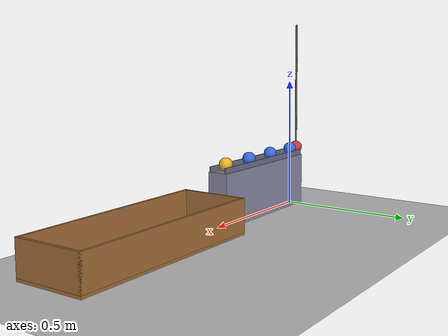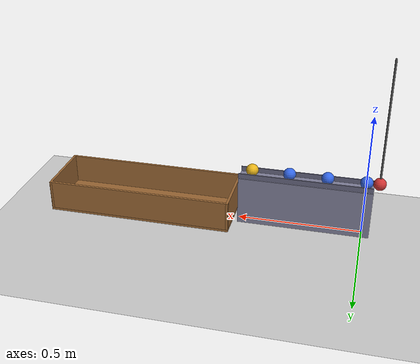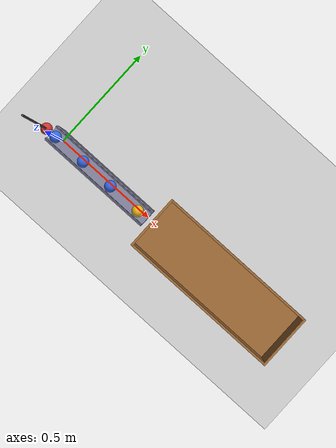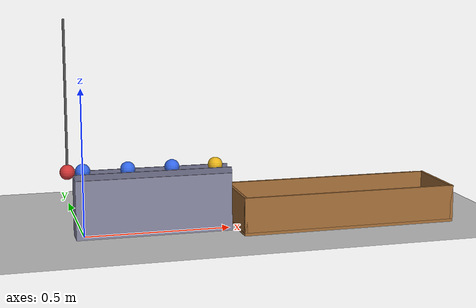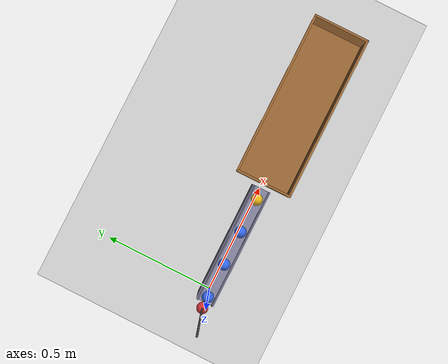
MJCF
<mujoco model="pendulum_ball_chain">
  <option timestep="0.002"/>
  <worldbody>
    <light name="sun" pos="0.4 -1 2" dir="0 0.5 -1"/>
    <geom name="floor" type="plane" size="3 3 0.1" rgba="0.8 0.8 0.8 1"/>

    <body name="pendulum" pos="-0.05 0 0.725">
      <joint name="pendulum_hinge" type="hinge" axis="0 1 0"/>
      <geom name="pendulum_arm" type="capsule" fromto="0 0 0 0 0 -0.475" size="0.004" mass="0.001" contype="0" conaffinity="0" rgba="0.3 0.3 0.3 1"/>
      <geom name="pendulum_bob" type="sphere" pos="0 0 -0.5" size="0.025" mass="0.1" contype="2" conaffinity="2" solref="0.01 0.1" friction="0.5 0.005 0.0001" rgba="0.8 0.2 0.2 1"/>
    </body>

    <body name="rail" pos="0 0 0">
      <geom name="rail_base" type="box" pos="0.235 0 0.1" size="0.265 0.04 0.1" contype="1" conaffinity="1" condim="3" friction="0.5 0.005 0.0001" rgba="0.5 0.5 0.6 1"/>
      <geom name="rail_guide_left" type="box" pos="0.235 0.0325 0.21" size="0.265 0.0025 0.01" contype="1" conaffinity="1" rgba="0.4 0.4 0.5 1"/>
      <geom name="rail_guide_right" type="box" pos="0.235 -0.0325 0.21" size="0.265 0.0025 0.01" contype="1" conaffinity="1" rgba="0.4 0.4 0.5 1"/>
    </body>

    <body name="ball1" pos="0 0 0.225">
      <freejoint name="ball1_free"/>
      <geom name="ball1_geom" type="sphere" size="0.025" mass="0.1" contype="1" conaffinity="3" condim="3" solref="0.01 0.1" friction="0.5 0.005 0.0001" rgba="0.2 0.4 0.9 1"/>
    </body>
    <body name="ball2" pos="0.15 0 0.225">
      <freejoint name="ball2_free"/>
      <geom name="ball2_geom" type="sphere" size="0.025" mass="0.1" contype="1" conaffinity="3" condim="3" solref="0.01 0.1" friction="0.5 0.005 0.0001" rgba="0.2 0.4 0.9 1"/>
    </body>
    <body name="ball3" pos="0.30 0 0.225">
      <freejoint name="ball3_free"/>
      <geom name="ball3_geom" type="sphere" size="0.025" mass="0.1" contype="1" conaffinity="3" condim="3" solref="0.01 0.1" friction="0.5 0.005 0.0001" rgba="0.2 0.4 0.9 1"/>
    </body>
    <body name="ball4" pos="0.45 0 0.225">
      <freejoint name="ball4_free"/>
      <geom name="ball4_geom" type="sphere" size="0.025" mass="0.1" contype="1" conaffinity="3" condim="3" solref="0.01 0.1" friction="0.5 0.005 0.0001" rgba="0.9 0.7 0.1 1"/>
    </body>

    <body name="box" pos="0 0 0">
      <geom name="box_floor" type="box" pos="0.9 0 0.005" size="0.38 0.13 0.005" condim="6" friction="0.8 0.01 0.01" solref="0.02 1" rgba="0.6 0.4 0.2 1"/>
      <geom name="box_wall_near" type="box" pos="0.525 0 0.07" size="0.005 0.13 0.06" condim="6" friction="0.8 0.01 0.01" solref="0.02 1" rgba="0.6 0.4 0.2 1"/>
      <geom name="box_wall_far" type="box" pos="1.275 0 0.07" size="0.005 0.13 0.06" condim="6" friction="0.8 0.01 0.01" solref="0.02 1" rgba="0.6 0.4 0.2 1"/>
      <geom name="box_wall_left" type="box" pos="0.9 0.125 0.07" size="0.38 0.005 0.06" condim="6" friction="0.8 0.01 0.01" solref="0.02 1" rgba="0.6 0.4 0.2 1"/>
      <geom name="box_wall_right" type="box" pos="0.9 -0.125 0.07" size="0.38 0.005 0.06" condim="6" friction="0.8 0.01 0.01" solref="0.02 1" rgba="0.6 0.4 0.2 1"/>
    </body>
  </worldbody>

  <keyframe>
    <key name="start" qpos="1.5708  0 0 0.225 1 0 0 0  0.15 0 0.225 1 0 0 0  0.30 0 0.225 1 0 0 0  0.45 0 0.225 1 0 0 0"/>
  </keyframe>
</mujoco>
